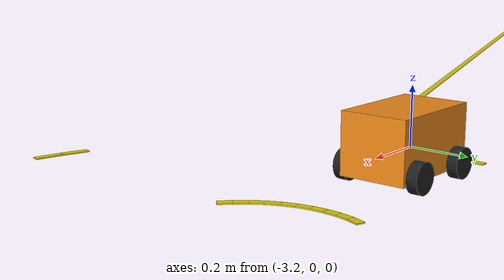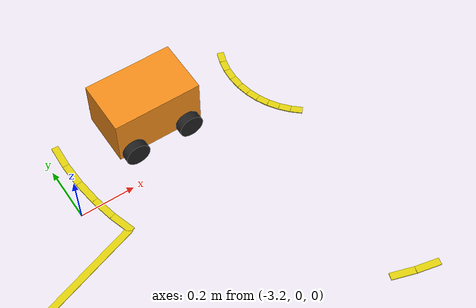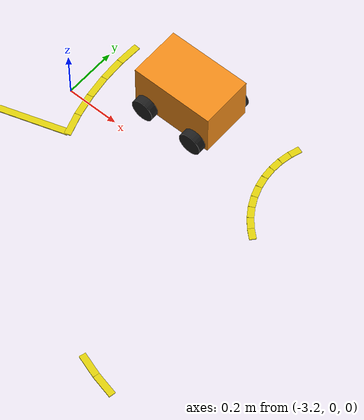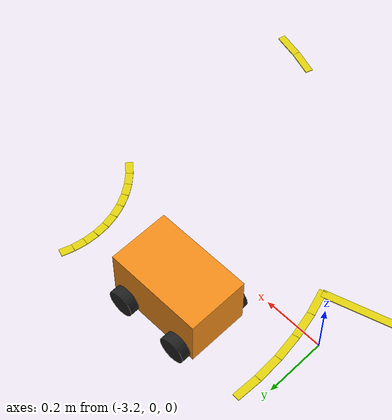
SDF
<sdf version="1.6">
 <world name="limo_competition">
  <include><uri>model://sun</uri></include>
  <model name="roundabout_outer_36">
   <static>true</static>
   <pose>-3.148097349045873 0.24357787137382916 0.003 0 0 -1.6144295580947523</pose>
   <link name="link">
    <visual name="visual">
     <geometry><box><size>0.0872387747306719 0.025 0.004</size></box></geometry>
     <material>
      <ambient>0.88 0.82 0.05 1.0</ambient>
      <diffuse>0.88 0.82 0.05 1.0</diffuse>
      <specular>0.05 0.05 0.05 1</specular>
     </material>
    </visual>
   </link>
  </model>
  <model name="roundabout_outer_37">
   <static>true</static>
   <pose>-3.148097349045873 0.1564221286261713 0.003 0 0 -1.5271630954950408</pose>
   <link name="link">
    <visual name="visual">
     <geometry><box><size>0.08723877473067145 0.025 0.004</size></box></geometry>
     <material>
      <ambient>0.88 0.82 0.05 1.0</ambient>
      <diffuse>0.88 0.82 0.05 1.0</diffuse>
      <specular>0.05 0.05 0.05 1</specular>
     </material>
    </visual>
   </link>
  </model>
  <model name="roundabout_outer_38">
   <static>true</static>
   <pose>-3.1405012255519766 0.06959803979270601 0.003 0 0 -1.4398966328953213</pose>
   <link name="link">
    <visual name="visual">
     <geometry><box><size>0.08723877473067279 0.025 0.004</size></box></geometry>
     <material>
      <ambient>0.88 0.82 0.05 1.0</ambient>
      <diffuse>0.88 0.82 0.05 1.0</diffuse>
      <specular>0.05 0.05 0.05 1</specular>
     </material>
    </visual>
   </link>
  </model>
  <model name="roundabout_outer_39">
   <static>true</static>
   <pose>-3.125366789650638 -0.01623361138472562 0.003 0 0 -1.3526301702956034</pose>
   <link name="link">
    <visual name="visual">
     <geometry><box><size>0.08723877473067194 0.025 0.004</size></box></geometry>
     <material>
      <ambient>0.88 0.82 0.05 1.0</ambient>
      <diffuse>0.88 0.82 0.05 1.0</diffuse>
      <specular>0.05 0.05 0.05 1</specular>
     </material>
    </visual>
   </link>
  </model>
  <model name="roundabout_outer_40">
   <static>true</static>
   <pose>-3.1028092235374882 -0.10041959421409472 0.003 0 0 -1.26536370769589</pose>
   <link name="link">
    <visual name="visual">
     <geometry><box><size>0.08723877473067186 0.025 0.004</size></box></geometry>
     <material>
      <ambient>0.88 0.82 0.05 1.0</ambient>
      <diffuse>0.88 0.82 0.05 1.0</diffuse>
      <specular>0.05 0.05 0.05 1</specular>
     </material>
    </visual>
   </link>
  </model>
  <model name="roundabout_outer_51">
   <static>true</static>
   <pose>-2.4504195942140945 -0.7528092235374884 0.003 0 0 -0.3054326190990072</pose>
   <link name="link">
    <visual name="visual">
     <geometry><box><size>0.0872387747306717 0.025 0.004</size></box></geometry>
     <material>
      <ambient>0.88 0.82 0.05 1.0</ambient>
      <diffuse>0.88 0.82 0.05 1.0</diffuse>
      <specular>0.05 0.05 0.05 1</specular>
     </material>
    </visual>
   </link>
  </model>
  <model name="roundabout_outer_52">
   <static>true</static>
   <pose>-2.3662336113847253 -0.7753667896506381 0.003 0 0 -0.21816615649929097</pose>
   <link name="link">
    <visual name="visual">
     <geometry><box><size>0.08723877473067179 0.025 0.004</size></box></geometry>
     <material>
      <ambient>0.88 0.82 0.05 1.0</ambient>
      <diffuse>0.88 0.82 0.05 1.0</diffuse>
      <specular>0.05 0.05 0.05 1</specular>
     </material>
    </visual>
   </link>
  </model>
  <model name="roundabout_island_edge_22">
   <static>true</static>
   <pose>-2.4523688574080564 0.30264039639481777 0.003 0 0 -1.8980455615438403</pose>
   <link name="link">
    <visual name="visual">
     <geometry><box><size>0.04185800270729159 0.025 0.004</size></box></geometry>
     <material>
      <ambient>0.88 0.82 0.05 1.0</ambient>
      <diffuse>0.88 0.82 0.05 1.0</diffuse>
      <specular>0.05 0.05 0.05 1</specular>
     </material>
    </visual>
   </link>
  </model>
  <model name="roundabout_island_edge_23">
   <static>true</static>
   <pose>-2.4631793100260606 0.26229523797161164 0.003 0 0 -1.7671458676442595</pose>
   <link name="link">
    <visual name="visual">
     <geometry><box><size>0.041858002707291675 0.025 0.004</size></box></geometry>
     <material>
      <ambient>0.88 0.82 0.05 1.0</ambient>
      <diffuse>0.88 0.82 0.05 1.0</diffuse>
      <specular>0.05 0.05 0.05 1</specular>
     </material>
    </visual>
   </link>
  </model>
  <model name="roundabout_island_edge_24">
   <static>true</static>
   <pose>-2.46863117781981 0.22088419075520827 0.003 0 0 -1.636246173744677</pose>
   <link name="link">
    <visual name="visual">
     <geometry><box><size>0.041858002707291515 0.025 0.004</size></box></geometry>
     <material>
      <ambient>0.88 0.82 0.05 1.0</ambient>
      <diffuse>0.88 0.82 0.05 1.0</diffuse>
      <specular>0.05 0.05 0.05 1</specular>
     </material>
    </visual>
   </link>
  </model>
  <model name="roundabout_island_edge_25">
   <static>true</static>
   <pose>-2.46863117781981 0.1791158092447918 0.003 0 0 -1.5053464798451162</pose>
   <link name="link">
    <visual name="visual">
     <geometry><box><size>0.04185800270729149 0.025 0.004</size></box></geometry>
     <material>
      <ambient>0.88 0.82 0.05 1.0</ambient>
      <diffuse>0.88 0.82 0.05 1.0</diffuse>
      <specular>0.05 0.05 0.05 1</specular>
     </material>
    </visual>
   </link>
  </model>
  <model name="roundabout_island_edge_26">
   <static>true</static>
   <pose>-2.4631793100260606 0.13770476202838847 0.003 0 0 -1.3744467859455336</pose>
   <link name="link">
    <visual name="visual">
     <geometry><box><size>0.04185800270729166 0.025 0.004</size></box></geometry>
     <material>
      <ambient>0.88 0.82 0.05 1.0</ambient>
      <diffuse>0.88 0.82 0.05 1.0</diffuse>
      <specular>0.05 0.05 0.05 1</specular>
     </material>
    </visual>
   </link>
  </model>
  <model name="roundabout_island_edge_27">
   <static>true</static>
   <pose>-2.4523688574080564 0.09735960360518234 0.003 0 0 -1.2435470920459533</pose>
   <link name="link">
    <visual name="visual">
     <geometry><box><size>0.04185800270729162 0.025 0.004</size></box></geometry>
     <material>
      <ambient>0.88 0.82 0.05 1.0</ambient>
      <diffuse>0.88 0.82 0.05 1.0</diffuse>
      <specular>0.05 0.05 0.05 1</specular>
     </material>
    </visual>
   </link>
  </model>
  <model name="roundabout_island_edge_28">
   <static>true</static>
   <pose>-2.436384789807316 0.05877065082158565 0.003 0 0 -1.11264739814639</pose>
   <link name="link">
    <visual name="visual">
     <geometry><box><size>0.04185800270729153 0.025 0.004</size></box></geometry>
     <material>
      <ambient>0.88 0.82 0.05 1.0</ambient>
      <diffuse>0.88 0.82 0.05 1.0</diffuse>
      <specular>0.05 0.05 0.05 1</specular>
     </material>
    </visual>
   </link>
  </model>
  <model name="roundabout_island_edge_29">
   <static>true</static>
   <pose>-2.4155005990521077 0.022598171358604688 0.003 0 0 -0.9817477042468084</pose>
   <link name="link">
    <visual name="visual">
     <geometry><box><size>0.0418580027072916 0.025 0.004</size></box></geometry>
     <material>
      <ambient>0.88 0.82 0.05 1.0</ambient>
      <diffuse>0.88 0.82 0.05 1.0</diffuse>
      <specular>0.05 0.05 0.05 1</specular>
     </material>
    </visual>
   </link>
  </model>
  <model name="roundabout_island_edge_30">
   <static>true</static>
   <pose>-2.3900736194364454 -0.010538913631242888 0.003 0 0 -0.8508480103472382</pose>
   <link name="link">
    <visual name="visual">
     <geometry><box><size>0.04185800270729142 0.025 0.004</size></box></geometry>
     <material>
      <ambient>0.88 0.82 0.05 1.0</ambient>
      <diffuse>0.88 0.82 0.05 1.0</diffuse>
      <specular>0.05 0.05 0.05 1</specular>
     </material>
    </visual>
   </link>
  </model>
  <model name="roundabout_island_edge_31">
   <static>true</static>
   <pose>-2.3605389136312427 -0.04007361943644516 0.003 0 0 -0.7199483164476599</pose>
   <link name="link">
    <visual name="visual">
     <geometry><box><size>0.041858002707291515 0.025 0.004</size></box></geometry>
     <material>
      <ambient>0.88 0.82 0.05 1.0</ambient>
      <diffuse>0.88 0.82 0.05 1.0</diffuse>
      <specular>0.05 0.05 0.05 1</specular>
     </material>
    </visual>
   </link>
  </model>
  <model name="roundabout_dynamic_obstacle_2">
   <pose>-2.83 0.2 0 0 0 3.141592653589793</pose>
   <static>false</static>
   <link name="vehicle_link">
    <gravity>false</gravity>
    <kinematic>true</kinematic>
    <visual name="body_visual">
     <pose>0 0 0.125 0 0 0</pose>
     <geometry><box><size>0.32 0.20 0.18</size></box></geometry>
     <material>
      <script><uri>file://media/materials/scripts/gazebo.material</uri><name>Gazebo/Orange</name></script>
     </material>
    </visual>
    <collision name="body_collision">
     <pose>0 0 0.125 0 0 0</pose>
     <geometry><box><size>0.32 0.20 0.18</size></box></geometry>
    </collision>
    <visual name="front_left_wheel">
     <pose>0.105 0.115 0.055 1.5708 0 0</pose>
     <geometry><cylinder><radius>0.045</radius><length>0.032</length></cylinder></geometry>
     <material>
      <script><uri>file://media/materials/scripts/gazebo.material</uri><name>Gazebo/Black</name></script>
     </material>
    </visual>
    <visual name="front_right_wheel">
     <pose>0.105 -0.115 0.055 1.5708 0 0</pose>
     <geometry><cylinder><radius>0.045</radius><length>0.032</length></cylinder></geometry>
     <material>
      <script><uri>file://media/materials/scripts/gazebo.material</uri><name>Gazebo/Black</name></script>
     </material>
    </visual>
    <visual name="rear_left_wheel">
     <pose>-0.105 0.115 0.055 1.5708 0 0</pose>
     <geometry><cylinder><radius>0.045</radius><length>0.032</length></cylinder></geometry>
     <material>
      <script><uri>file://media/materials/scripts/gazebo.material</uri><name>Gazebo/Black</name></script>
     </material>
    </visual>
    <visual name="rear_right_wheel">
     <pose>-0.105 -0.115 0.055 1.5708 0 0</pose>
     <geometry><cylinder><radius>0.045</radius><length>0.032</length></cylinder></geometry>
     <material>
      <script><uri>file://media/materials/scripts/gazebo.material</uri><name>Gazebo/Black</name></script>
     </material>
    </visual>
   </link>
  </model>
  <model name="roundabout_to_left_outer_1">
   <static>true</static>
   <pose>-4.762713887797991 -0.6759342583365555 0.003 0 0 -2.827433388230814</pose>
   <link name="link">
    <visual name="visual">
     <geometry><box><size>3.511694364562222 0.025 0.004</size></box></geometry>
     <material>
      <ambient>0.88 0.82 0.05 1.0</ambient>
      <diffuse>0.88 0.82 0.05 1.0</diffuse>
      <specular>0.05 0.05 0.05 1</specular>
     </material>
    </visual>
   </link>
  </model>
 </world>
</sdf>
